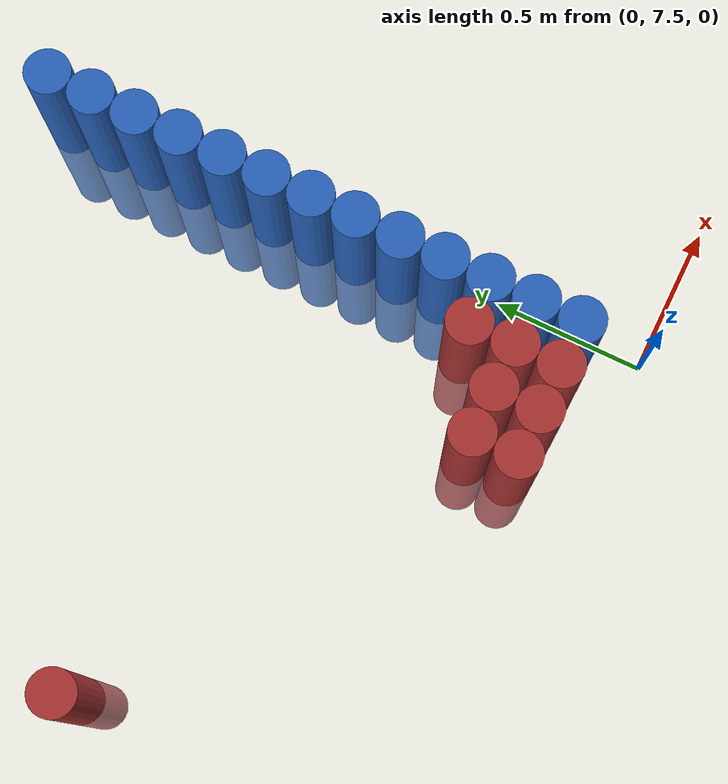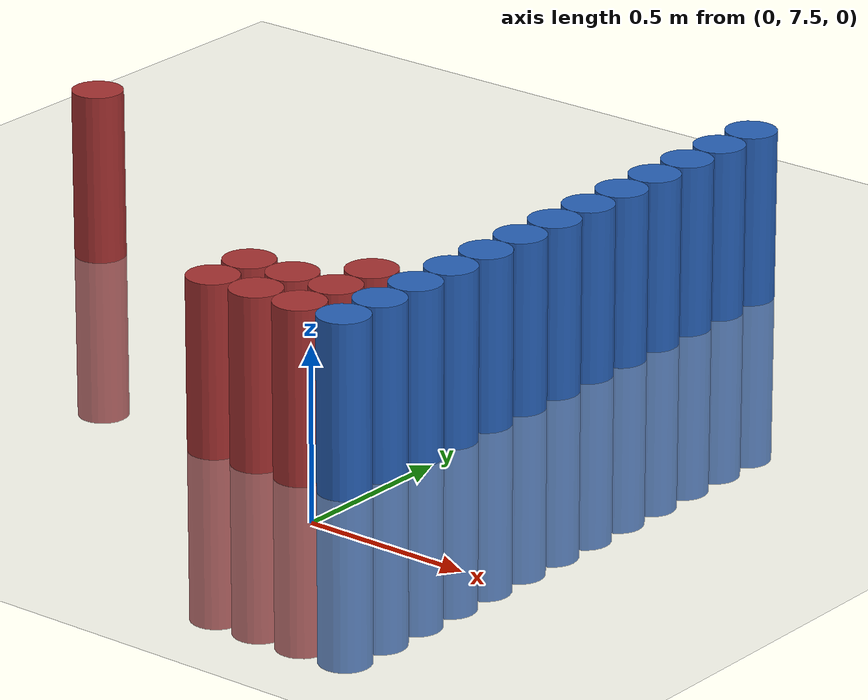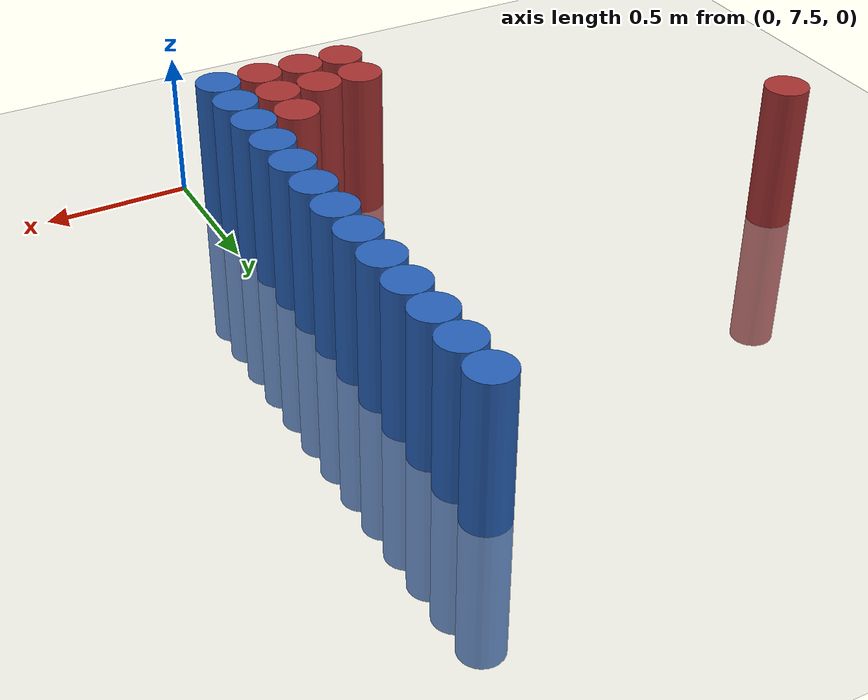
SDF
<sdf version="1.6">
 <world name="default">
  <model name="ground_plane">
   <static>1</static>
   <link name="link">
    <collision name="collision">
     <geometry><plane><normal>0 0 1</normal><size>100 100</size></plane></geometry>
     <surface><friction><ode><mu>100</mu><mu2>50</mu2></ode></friction></surface>
    </collision>
    <visual name="visual">
     <cast_shadows>0</cast_shadows>
     <geometry><plane><normal>0 0 1</normal><size>100 100</size></plane></geometry>
     <material>
      <script><uri>file://media/materials/scripts/gazebo.material</uri><name>Gazebo/Grey</name></script>
     </material>
    </visual>
   </link>
  </model>
  <model name="unit_cylinder_226">
   <static>1</static>
   <pose>-1.725000 8.625000 0.000000 0.000000 0.000000 0.000000</pose>
   <link name="link">
    <inertial>
     <mass>1</mass>
     <inertia><ixx>0.145833</ixx><ixy>0</ixy><ixz>0</ixz><iyy>0.145833</iyy><iyz>0</iyz><izz>0.125</izz></inertia>
    </inertial>
    <collision name="collision">
     <geometry><cylinder><radius>0.075000</radius><length>1</length></cylinder></geometry>
    </collision>
    <visual name="visual">
     <geometry><cylinder><radius>0.075000</radius><length>1</length></cylinder></geometry>
     <material>
      <ambient>0.648000 0.192000 0.192000 1</ambient>
      <diffuse>0.648000 0.192000 0.192000 1</diffuse>
     </material>
     <material>
      <script><name>Gazebo/Grey</name><uri>file://media/materials/scripts/gazebo.material</uri></script>
     </material>
    </visual>
    <sensor name="sensor_contact" type="contact"><contact><collision>collision</collision></contact></sensor>
   </link>
   <plugin filename="gz-sim-touchplugin-system" name="gz::sim::systems::TouchPlugin">
    <target>robot</target>
    <namespace>robot</namespace>
    <time>0.001</time>
    <enabled>true</enabled>
   </plugin>
  </model>
  <model name="unit_cylinder_234">
   <static>1</static>
   <pose>-0.525000 7.725000 0.000000 0.000000 0.000000 0.000000</pose>
   <link name="link">
    <inertial>
     <mass>1</mass>
     <inertia><ixx>0.145833</ixx><ixy>0</ixy><ixz>0</ixz><iyy>0.145833</iyy><iyz>0</iyz><izz>0.125</izz></inertia>
    </inertial>
    <collision name="collision">
     <geometry><cylinder><radius>0.075000</radius><length>1</length></cylinder></geometry>
    </collision>
    <visual name="visual">
     <geometry><cylinder><radius>0.075000</radius><length>1</length></cylinder></geometry>
     <material>
      <ambient>0.648000 0.192000 0.192000 1</ambient>
      <diffuse>0.648000 0.192000 0.192000 1</diffuse>
     </material>
     <material>
      <script><name>Gazebo/Grey</name><uri>file://media/materials/scripts/gazebo.material</uri></script>
     </material>
    </visual>
    <sensor name="sensor_contact" type="contact"><contact><collision>collision</collision></contact></sensor>
   </link>
   <plugin filename="gz-sim-touchplugin-system" name="gz::sim::systems::TouchPlugin">
    <target>robot</target>
    <namespace>robot</namespace>
    <time>0.001</time>
    <enabled>true</enabled>
   </plugin>
  </model>
  <model name="unit_cylinder_235">
   <static>1</static>
   <pose>-0.525000 7.875000 0.000000 0.000000 0.000000 0.000000</pose>
   <link name="link">
    <inertial>
     <mass>1</mass>
     <inertia><ixx>0.145833</ixx><ixy>0</ixy><ixz>0</ixz><iyy>0.145833</iyy><iyz>0</iyz><izz>0.125</izz></inertia>
    </inertial>
    <collision name="collision">
     <geometry><cylinder><radius>0.075000</radius><length>1</length></cylinder></geometry>
    </collision>
    <visual name="visual">
     <geometry><cylinder><radius>0.075000</radius><length>1</length></cylinder></geometry>
     <material>
      <ambient>0.648000 0.192000 0.192000 1</ambient>
      <diffuse>0.648000 0.192000 0.192000 1</diffuse>
     </material>
     <material>
      <script><name>Gazebo/Grey</name><uri>file://media/materials/scripts/gazebo.material</uri></script>
     </material>
    </visual>
    <sensor name="sensor_contact" type="contact"><contact><collision>collision</collision></contact></sensor>
   </link>
   <plugin filename="gz-sim-touchplugin-system" name="gz::sim::systems::TouchPlugin">
    <target>robot</target>
    <namespace>robot</namespace>
    <time>0.001</time>
    <enabled>true</enabled>
   </plugin>
  </model>
  <model name="unit_cylinder_238">
   <static>1</static>
   <pose>-0.375000 7.725000 0.000000 0.000000 0.000000 0.000000</pose>
   <link name="link">
    <inertial>
     <mass>1</mass>
     <inertia><ixx>0.145833</ixx><ixy>0</ixy><ixz>0</ixz><iyy>0.145833</iyy><iyz>0</iyz><izz>0.125</izz></inertia>
    </inertial>
    <collision name="collision">
     <geometry><cylinder><radius>0.075000</radius><length>1</length></cylinder></geometry>
    </collision>
    <visual name="visual">
     <geometry><cylinder><radius>0.075000</radius><length>1</length></cylinder></geometry>
     <material>
      <ambient>0.648000 0.192000 0.192000 1</ambient>
      <diffuse>0.648000 0.192000 0.192000 1</diffuse>
     </material>
     <material>
      <script><name>Gazebo/Grey</name><uri>file://media/materials/scripts/gazebo.material</uri></script>
     </material>
    </visual>
    <sensor name="sensor_contact" type="contact"><contact><collision>collision</collision></contact></sensor>
   </link>
   <plugin filename="gz-sim-touchplugin-system" name="gz::sim::systems::TouchPlugin">
    <target>robot</target>
    <namespace>robot</namespace>
    <time>0.001</time>
    <enabled>true</enabled>
   </plugin>
  </model>
  <model name="unit_cylinder_239">
   <static>1</static>
   <pose>-0.375000 7.875000 0.000000 0.000000 0.000000 0.000000</pose>
   <link name="link">
    <inertial>
     <mass>1</mass>
     <inertia><ixx>0.145833</ixx><ixy>0</ixy><ixz>0</ixz><iyy>0.145833</iyy><iyz>0</iyz><izz>0.125</izz></inertia>
    </inertial>
    <collision name="collision">
     <geometry><cylinder><radius>0.075000</radius><length>1</length></cylinder></geometry>
    </collision>
    <visual name="visual">
     <geometry><cylinder><radius>0.075000</radius><length>1</length></cylinder></geometry>
     <material>
      <ambient>0.648000 0.192000 0.192000 1</ambient>
      <diffuse>0.648000 0.192000 0.192000 1</diffuse>
     </material>
     <material>
      <script><name>Gazebo/Grey</name><uri>file://media/materials/scripts/gazebo.material</uri></script>
     </material>
    </visual>
    <sensor name="sensor_contact" type="contact"><contact><collision>collision</collision></contact></sensor>
   </link>
   <plugin filename="gz-sim-touchplugin-system" name="gz::sim::systems::TouchPlugin">
    <target>robot</target>
    <namespace>robot</namespace>
    <time>0.001</time>
    <enabled>true</enabled>
   </plugin>
  </model>
  <model name="unit_cylinder_251">
   <static>1</static>
   <pose>-0.225000 7.725000 0.000000 0.000000 0.000000 0.000000</pose>
   <link name="link">
    <inertial>
     <mass>1</mass>
     <inertia><ixx>0.145833</ixx><ixy>0</ixy><ixz>0</ixz><iyy>0.145833</iyy><iyz>0</iyz><izz>0.125</izz></inertia>
    </inertial>
    <collision name="collision">
     <geometry><cylinder><radius>0.075000</radius><length>1</length></cylinder></geometry>
    </collision>
    <visual name="visual">
     <geometry><cylinder><radius>0.075000</radius><length>1</length></cylinder></geometry>
     <material>
      <ambient>0.648000 0.192000 0.192000 1</ambient>
      <diffuse>0.648000 0.192000 0.192000 1</diffuse>
     </material>
     <material>
      <script><name>Gazebo/Grey</name><uri>file://media/materials/scripts/gazebo.material</uri></script>
     </material>
    </visual>
    <sensor name="sensor_contact" type="contact"><contact><collision>collision</collision></contact></sensor>
   </link>
   <plugin filename="gz-sim-touchplugin-system" name="gz::sim::systems::TouchPlugin">
    <target>robot</target>
    <namespace>robot</namespace>
    <time>0.001</time>
    <enabled>true</enabled>
   </plugin>
  </model>
  <model name="unit_cylinder_252">
   <static>1</static>
   <pose>-0.225000 7.875000 0.000000 0.000000 0.000000 0.000000</pose>
   <link name="link">
    <inertial>
     <mass>1</mass>
     <inertia><ixx>0.145833</ixx><ixy>0</ixy><ixz>0</ixz><iyy>0.145833</iyy><iyz>0</iyz><izz>0.125</izz></inertia>
    </inertial>
    <collision name="collision">
     <geometry><cylinder><radius>0.075000</radius><length>1</length></cylinder></geometry>
    </collision>
    <visual name="visual">
     <geometry><cylinder><radius>0.075000</radius><length>1</length></cylinder></geometry>
     <material>
      <ambient>0.648000 0.192000 0.192000 1</ambient>
      <diffuse>0.648000 0.192000 0.192000 1</diffuse>
     </material>
     <material>
      <script><name>Gazebo/Grey</name><uri>file://media/materials/scripts/gazebo.material</uri></script>
     </material>
    </visual>
    <sensor name="sensor_contact" type="contact"><contact><collision>collision</collision></contact></sensor>
   </link>
   <plugin filename="gz-sim-touchplugin-system" name="gz::sim::systems::TouchPlugin">
    <target>robot</target>
    <namespace>robot</namespace>
    <time>0.001</time>
    <enabled>true</enabled>
   </plugin>
  </model>
  <model name="unit_cylinder_253">
   <static>1</static>
   <pose>-0.225000 8.025000 0.000000 0.000000 0.000000 0.000000</pose>
   <link name="link">
    <inertial>
     <mass>1</mass>
     <inertia><ixx>0.145833</ixx><ixy>0</ixy><ixz>0</ixz><iyy>0.145833</iyy><iyz>0</iyz><izz>0.125</izz></inertia>
    </inertial>
    <collision name="collision">
     <geometry><cylinder><radius>0.075000</radius><length>1</length></cylinder></geometry>
    </collision>
    <visual name="visual">
     <geometry><cylinder><radius>0.075000</radius><length>1</length></cylinder></geometry>
     <material>
      <ambient>0.648000 0.192000 0.192000 1</ambient>
      <diffuse>0.648000 0.192000 0.192000 1</diffuse>
     </material>
     <material>
      <script><name>Gazebo/Grey</name><uri>file://media/materials/scripts/gazebo.material</uri></script>
     </material>
    </visual>
    <sensor name="sensor_contact" type="contact"><contact><collision>collision</collision></contact></sensor>
   </link>
   <plugin filename="gz-sim-touchplugin-system" name="gz::sim::systems::TouchPlugin">
    <target>robot</target>
    <namespace>robot</namespace>
    <time>0.001</time>
    <enabled>true</enabled>
   </plugin>
  </model>
  <model name="unit_cylinder_271">
   <static>1</static>
   <pose>-0.075000 7.725000 0.000000 0.000000 0.000000 0.000000</pose>
   <link name="link">
    <inertial>
     <mass>1</mass>
     <inertia><ixx>0.145833</ixx><ixy>0</ixy><ixz>0</ixz><iyy>0.145833</iyy><iyz>0</iyz><izz>0.125</izz></inertia>
    </inertial>
    <collision name="collision">
     <geometry><cylinder><radius>0.075000</radius><length>1</length></cylinder></geometry>
    </collision>
    <visual name="visual">
     <geometry><cylinder><radius>0.075000</radius><length>1</length></cylinder></geometry>
     <material>
      <ambient>0.152000 0.379000 0.720000 1</ambient>
      <diffuse>0.152000 0.379000 0.720000 1</diffuse>
     </material>
     <material>
      <script><name>Gazebo/Grey</name><uri>file://media/materials/scripts/gazebo.material</uri></script>
     </material>
    </visual>
    <sensor name="sensor_contact" type="contact"><contact><collision>collision</collision></contact></sensor>
   </link>
   <plugin filename="gz-sim-touchplugin-system" name="gz::sim::systems::TouchPlugin">
    <target>robot</target>
    <namespace>robot</namespace>
    <time>0.001</time>
    <enabled>true</enabled>
   </plugin>
  </model>
  <model name="unit_cylinder_272">
   <static>1</static>
   <pose>-0.075000 7.875000 0.000000 0.000000 0.000000 0.000000</pose>
   <link name="link">
    <inertial>
     <mass>1</mass>
     <inertia><ixx>0.145833</ixx><ixy>0</ixy><ixz>0</ixz><iyy>0.145833</iyy><iyz>0</iyz><izz>0.125</izz></inertia>
    </inertial>
    <collision name="collision">
     <geometry><cylinder><radius>0.075000</radius><length>1</length></cylinder></geometry>
    </collision>
    <visual name="visual">
     <geometry><cylinder><radius>0.075000</radius><length>1</length></cylinder></geometry>
     <material>
      <ambient>0.152000 0.379000 0.720000 1</ambient>
      <diffuse>0.152000 0.379000 0.720000 1</diffuse>
     </material>
     <material>
      <script><name>Gazebo/Grey</name><uri>file://media/materials/scripts/gazebo.material</uri></script>
     </material>
    </visual>
    <sensor name="sensor_contact" type="contact"><contact><collision>collision</collision></contact></sensor>
   </link>
   <plugin filename="gz-sim-touchplugin-system" name="gz::sim::systems::TouchPlugin">
    <target>robot</target>
    <namespace>robot</namespace>
    <time>0.001</time>
    <enabled>true</enabled>
   </plugin>
  </model>
  <model name="unit_cylinder_273">
   <static>1</static>
   <pose>-0.075000 8.025000 0.000000 0.000000 0.000000 0.000000</pose>
   <link name="link">
    <inertial>
     <mass>1</mass>
     <inertia><ixx>0.145833</ixx><ixy>0</ixy><ixz>0</ixz><iyy>0.145833</iyy><iyz>0</iyz><izz>0.125</izz></inertia>
    </inertial>
    <collision name="collision">
     <geometry><cylinder><radius>0.075000</radius><length>1</length></cylinder></geometry>
    </collision>
    <visual name="visual">
     <geometry><cylinder><radius>0.075000</radius><length>1</length></cylinder></geometry>
     <material>
      <ambient>0.152000 0.379000 0.720000 1</ambient>
      <diffuse>0.152000 0.379000 0.720000 1</diffuse>
     </material>
     <material>
      <script><name>Gazebo/Grey</name><uri>file://media/materials/scripts/gazebo.material</uri></script>
     </material>
    </visual>
    <sensor name="sensor_contact" type="contact"><contact><collision>collision</collision></contact></sensor>
   </link>
   <plugin filename="gz-sim-touchplugin-system" name="gz::sim::systems::TouchPlugin">
    <target>robot</target>
    <namespace>robot</namespace>
    <time>0.001</time>
    <enabled>true</enabled>
   </plugin>
  </model>
  <model name="unit_cylinder_274">
   <static>1</static>
   <pose>-0.075000 8.175000 0.000000 0.000000 0.000000 0.000000</pose>
   <link name="link">
    <inertial>
     <mass>1</mass>
     <inertia><ixx>0.145833</ixx><ixy>0</ixy><ixz>0</ixz><iyy>0.145833</iyy><iyz>0</iyz><izz>0.125</izz></inertia>
    </inertial>
    <collision name="collision">
     <geometry><cylinder><radius>0.075000</radius><length>1</length></cylinder></geometry>
    </collision>
    <visual name="visual">
     <geometry><cylinder><radius>0.075000</radius><length>1</length></cylinder></geometry>
     <material>
      <ambient>0.152000 0.379000 0.720000 1</ambient>
      <diffuse>0.152000 0.379000 0.720000 1</diffuse>
     </material>
     <material>
      <script><name>Gazebo/Grey</name><uri>file://media/materials/scripts/gazebo.material</uri></script>
     </material>
    </visual>
    <sensor name="sensor_contact" type="contact"><contact><collision>collision</collision></contact></sensor>
   </link>
   <plugin filename="gz-sim-touchplugin-system" name="gz::sim::systems::TouchPlugin">
    <target>robot</target>
    <namespace>robot</namespace>
    <time>0.001</time>
    <enabled>true</enabled>
   </plugin>
  </model>
  <model name="unit_cylinder_275">
   <static>1</static>
   <pose>-0.075000 8.325000 0.000000 0.000000 0.000000 0.000000</pose>
   <link name="link">
    <inertial>
     <mass>1</mass>
     <inertia><ixx>0.145833</ixx><ixy>0</ixy><ixz>0</ixz><iyy>0.145833</iyy><iyz>0</iyz><izz>0.125</izz></inertia>
    </inertial>
    <collision name="collision">
     <geometry><cylinder><radius>0.075000</radius><length>1</length></cylinder></geometry>
    </collision>
    <visual name="visual">
     <geometry><cylinder><radius>0.075000</radius><length>1</length></cylinder></geometry>
     <material>
      <ambient>0.152000 0.379000 0.720000 1</ambient>
      <diffuse>0.152000 0.379000 0.720000 1</diffuse>
     </material>
     <material>
      <script><name>Gazebo/Grey</name><uri>file://media/materials/scripts/gazebo.material</uri></script>
     </material>
    </visual>
    <sensor name="sensor_contact" type="contact"><contact><collision>collision</collision></contact></sensor>
   </link>
   <plugin filename="gz-sim-touchplugin-system" name="gz::sim::systems::TouchPlugin">
    <target>robot</target>
    <namespace>robot</namespace>
    <time>0.001</time>
    <enabled>true</enabled>
   </plugin>
  </model>
  <model name="unit_cylinder_276">
   <static>1</static>
   <pose>-0.075000 8.475000 0.000000 0.000000 0.000000 0.000000</pose>
   <link name="link">
    <inertial>
     <mass>1</mass>
     <inertia><ixx>0.145833</ixx><ixy>0</ixy><ixz>0</ixz><iyy>0.145833</iyy><iyz>0</iyz><izz>0.125</izz></inertia>
    </inertial>
    <collision name="collision">
     <geometry><cylinder><radius>0.075000</radius><length>1</length></cylinder></geometry>
    </collision>
    <visual name="visual">
     <geometry><cylinder><radius>0.075000</radius><length>1</length></cylinder></geometry>
     <material>
      <ambient>0.152000 0.379000 0.720000 1</ambient>
      <diffuse>0.152000 0.379000 0.720000 1</diffuse>
     </material>
     <material>
      <script><name>Gazebo/Grey</name><uri>file://media/materials/scripts/gazebo.material</uri></script>
     </material>
    </visual>
    <sensor name="sensor_contact" type="contact"><contact><collision>collision</collision></contact></sensor>
   </link>
   <plugin filename="gz-sim-touchplugin-system" name="gz::sim::systems::TouchPlugin">
    <target>robot</target>
    <namespace>robot</namespace>
    <time>0.001</time>
    <enabled>true</enabled>
   </plugin>
  </model>
  <model name="unit_cylinder_277">
   <static>1</static>
   <pose>-0.075000 8.625000 0.000000 0.000000 0.000000 0.000000</pose>
   <link name="link">
    <inertial>
     <mass>1</mass>
     <inertia><ixx>0.145833</ixx><ixy>0</ixy><ixz>0</ixz><iyy>0.145833</iyy><iyz>0</iyz><izz>0.125</izz></inertia>
    </inertial>
    <collision name="collision">
     <geometry><cylinder><radius>0.075000</radius><length>1</length></cylinder></geometry>
    </collision>
    <visual name="visual">
     <geometry><cylinder><radius>0.075000</radius><length>1</length></cylinder></geometry>
     <material>
      <ambient>0.152000 0.379000 0.720000 1</ambient>
      <diffuse>0.152000 0.379000 0.720000 1</diffuse>
     </material>
     <material>
      <script><name>Gazebo/Grey</name><uri>file://media/materials/scripts/gazebo.material</uri></script>
     </material>
    </visual>
    <sensor name="sensor_contact" type="contact"><contact><collision>collision</collision></contact></sensor>
   </link>
   <plugin filename="gz-sim-touchplugin-system" name="gz::sim::systems::TouchPlugin">
    <target>robot</target>
    <namespace>robot</namespace>
    <time>0.001</time>
    <enabled>true</enabled>
   </plugin>
  </model>
  <model name="unit_cylinder_278">
   <static>1</static>
   <pose>-0.075000 8.775000 0.000000 0.000000 0.000000 0.000000</pose>
   <link name="link">
    <inertial>
     <mass>1</mass>
     <inertia><ixx>0.145833</ixx><ixy>0</ixy><ixz>0</ixz><iyy>0.145833</iyy><iyz>0</iyz><izz>0.125</izz></inertia>
    </inertial>
    <collision name="collision">
     <geometry><cylinder><radius>0.075000</radius><length>1</length></cylinder></geometry>
    </collision>
    <visual name="visual">
     <geometry><cylinder><radius>0.075000</radius><length>1</length></cylinder></geometry>
     <material>
      <ambient>0.152000 0.379000 0.720000 1</ambient>
      <diffuse>0.152000 0.379000 0.720000 1</diffuse>
     </material>
     <material>
      <script><name>Gazebo/Grey</name><uri>file://media/materials/scripts/gazebo.material</uri></script>
     </material>
    </visual>
    <sensor name="sensor_contact" type="contact"><contact><collision>collision</collision></contact></sensor>
   </link>
   <plugin filename="gz-sim-touchplugin-system" name="gz::sim::systems::TouchPlugin">
    <target>robot</target>
    <namespace>robot</namespace>
    <time>0.001</time>
    <enabled>true</enabled>
   </plugin>
  </model>
  <model name="unit_cylinder_279">
   <static>1</static>
   <pose>-0.075000 8.925000 0.000000 0.000000 0.000000 0.000000</pose>
   <link name="link">
    <inertial>
     <mass>1</mass>
     <inertia><ixx>0.145833</ixx><ixy>0</ixy><ixz>0</ixz><iyy>0.145833</iyy><iyz>0</iyz><izz>0.125</izz></inertia>
    </inertial>
    <collision name="collision">
     <geometry><cylinder><radius>0.075000</radius><length>1</length></cylinder></geometry>
    </collision>
    <visual name="visual">
     <geometry><cylinder><radius>0.075000</radius><length>1</length></cylinder></geometry>
     <material>
      <ambient>0.152000 0.379000 0.720000 1</ambient>
      <diffuse>0.152000 0.379000 0.720000 1</diffuse>
     </material>
     <material>
      <script><name>Gazebo/Grey</name><uri>file://media/materials/scripts/gazebo.material</uri></script>
     </material>
    </visual>
    <sensor name="sensor_contact" type="contact"><contact><collision>collision</collision></contact></sensor>
   </link>
   <plugin filename="gz-sim-touchplugin-system" name="gz::sim::systems::TouchPlugin">
    <target>robot</target>
    <namespace>robot</namespace>
    <time>0.001</time>
    <enabled>true</enabled>
   </plugin>
  </model>
  <model name="unit_cylinder_280">
   <static>1</static>
   <pose>-0.075000 9.075000 0.000000 0.000000 0.000000 0.000000</pose>
   <link name="link">
    <inertial>
     <mass>1</mass>
     <inertia><ixx>0.145833</ixx><ixy>0</ixy><ixz>0</ixz><iyy>0.145833</iyy><iyz>0</iyz><izz>0.125</izz></inertia>
    </inertial>
    <collision name="collision">
     <geometry><cylinder><radius>0.075000</radius><length>1</length></cylinder></geometry>
    </collision>
    <visual name="visual">
     <geometry><cylinder><radius>0.075000</radius><length>1</length></cylinder></geometry>
     <material>
      <ambient>0.152000 0.379000 0.720000 1</ambient>
      <diffuse>0.152000 0.379000 0.720000 1</diffuse>
     </material>
     <material>
      <script><name>Gazebo/Grey</name><uri>file://media/materials/scripts/gazebo.material</uri></script>
     </material>
    </visual>
    <sensor name="sensor_contact" type="contact"><contact><collision>collision</collision></contact></sensor>
   </link>
   <plugin filename="gz-sim-touchplugin-system" name="gz::sim::systems::TouchPlugin">
    <target>robot</target>
    <namespace>robot</namespace>
    <time>0.001</time>
    <enabled>true</enabled>
   </plugin>
  </model>
  <model name="unit_cylinder_281">
   <static>1</static>
   <pose>-0.075000 9.225000 0.000000 0.000000 0.000000 0.000000</pose>
   <link name="link">
    <inertial>
     <mass>1</mass>
     <inertia><ixx>0.145833</ixx><ixy>0</ixy><ixz>0</ixz><iyy>0.145833</iyy><iyz>0</iyz><izz>0.125</izz></inertia>
    </inertial>
    <collision name="collision">
     <geometry><cylinder><radius>0.075000</radius><length>1</length></cylinder></geometry>
    </collision>
    <visual name="visual">
     <geometry><cylinder><radius>0.075000</radius><length>1</length></cylinder></geometry>
     <material>
      <ambient>0.152000 0.379000 0.720000 1</ambient>
      <diffuse>0.152000 0.379000 0.720000 1</diffuse>
     </material>
     <material>
      <script><name>Gazebo/Grey</name><uri>file://media/materials/scripts/gazebo.material</uri></script>
     </material>
    </visual>
    <sensor name="sensor_contact" type="contact"><contact><collision>collision</collision></contact></sensor>
   </link>
   <plugin filename="gz-sim-touchplugin-system" name="gz::sim::systems::TouchPlugin">
    <target>robot</target>
    <namespace>robot</namespace>
    <time>0.001</time>
    <enabled>true</enabled>
   </plugin>
  </model>
  <model name="unit_cylinder_282">
   <static>1</static>
   <pose>-0.075000 9.375000 0.000000 0.000000 0.000000 0.000000</pose>
   <link name="link">
    <inertial>
     <mass>1</mass>
     <inertia><ixx>0.145833</ixx><ixy>0</ixy><ixz>0</ixz><iyy>0.145833</iyy><iyz>0</iyz><izz>0.125</izz></inertia>
    </inertial>
    <collision name="collision">
     <geometry><cylinder><radius>0.075000</radius><length>1</length></cylinder></geometry>
    </collision>
    <visual name="visual">
     <geometry><cylinder><radius>0.075000</radius><length>1</length></cylinder></geometry>
     <material>
      <ambient>0.152000 0.379000 0.720000 1</ambient>
      <diffuse>0.152000 0.379000 0.720000 1</diffuse>
     </material>
     <material>
      <script><name>Gazebo/Grey</name><uri>file://media/materials/scripts/gazebo.material</uri></script>
     </material>
    </visual>
    <sensor name="sensor_contact" type="contact"><contact><collision>collision</collision></contact></sensor>
   </link>
   <plugin filename="gz-sim-touchplugin-system" name="gz::sim::systems::TouchPlugin">
    <target>robot</target>
    <namespace>robot</namespace>
    <time>0.001</time>
    <enabled>true</enabled>
   </plugin>
  </model>
  <model name="unit_cylinder_283">
   <static>1</static>
   <pose>-0.075000 9.525000 0.000000 0.000000 0.000000 0.000000</pose>
   <link name="link">
    <inertial>
     <mass>1</mass>
     <inertia><ixx>0.145833</ixx><ixy>0</ixy><ixz>0</ixz><iyy>0.145833</iyy><iyz>0</iyz><izz>0.125</izz></inertia>
    </inertial>
    <collision name="collision">
     <geometry><cylinder><radius>0.075000</radius><length>1</length></cylinder></geometry>
    </collision>
    <visual name="visual">
     <geometry><cylinder><radius>0.075000</radius><length>1</length></cylinder></geometry>
     <material>
      <ambient>0.152000 0.379000 0.720000 1</ambient>
      <diffuse>0.152000 0.379000 0.720000 1</diffuse>
     </material>
     <material>
      <script><name>Gazebo/Grey</name><uri>file://media/materials/scripts/gazebo.material</uri></script>
     </material>
    </visual>
    <sensor name="sensor_contact" type="contact"><contact><collision>collision</collision></contact></sensor>
   </link>
   <plugin filename="gz-sim-touchplugin-system" name="gz::sim::systems::TouchPlugin">
    <target>robot</target>
    <namespace>robot</namespace>
    <time>0.001</time>
    <enabled>true</enabled>
   </plugin>
  </model>
 </world>
</sdf>
